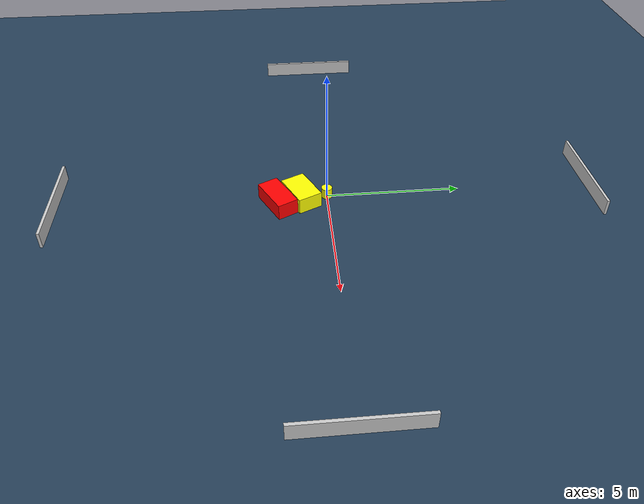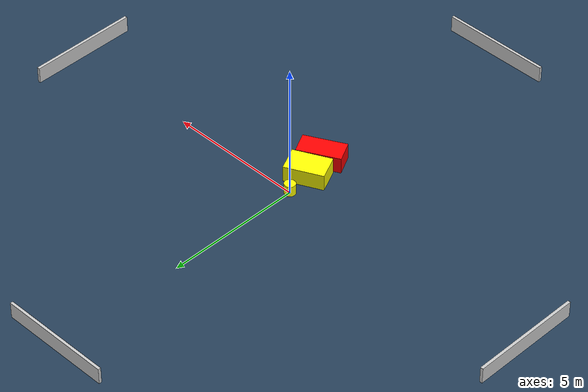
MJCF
<?xml version="1.0" ?>
<mujoco model="generated_environment">
  <option timestep="0.01" integrator="RK4" cone="elliptic"/>
  <default>
    <geom density="1"/>
  </default>
  <asset>
    <texture builtin="gradient" height="3072" name="skybox" rgb1="0.3 0.5 0.7" rgb2="0 0 0" type="skybox" width="512"/>
    <texture builtin="checker" height="300" name="groundplane" rgb1="0.2 0.3 0.4" rgb2="0.1 0.2 0.3" type="2d" width="300"/>
    <material name="groundplane" reflectance="0.2" texrepeat="5 5" texture="groundplane"/>
  </asset>
  <worldbody>
    <light dir="0 0 -1" directional="true" pos="0 0 1.5"/>
    <geom condim="3" friction="0.5 0.005 0.001" material="groundplane" name="floor" pos="0 0 0" size="0 0 0.05" type="plane"/>
    <body name="walls">
      <geom name="wall_1" condim="4" pos="-10.0 0.0 0.3" rgba="0.800000011920929 0.800000011920929 0.800000011920929 1.0" size="0.05 2.0 0.3" type="box"/>
      <geom name="wall_2" condim="4" pos="10.0 0.0 0.3" rgba="0.800000011920929 0.800000011920929 0.800000011920929 1.0" size="0.05 2.0 0.3" type="box"/>
      <geom name="wall_3" condim="4" pos="0.0 -10.0 0.3" rgba="0.800000011920929 0.800000011920929 0.800000011920929 1.0" size="2.0 0.05 0.3" type="box"/>
      <geom name="wall_4" condim="4" pos="0.0 10.0 0.3" rgba="0.800000011920929 0.800000011920929 0.800000011920929 1.0" size="2.0 0.05 0.3" type="box"/>
    </body>
    <body name="robot">
      <joint name="joint_x" type="slide" pos="0 0 0" axis="1 0 0"/>
      <joint name="joint_y" type="slide" pos="0 0 0" axis="0 1 0"/>
      <geom name="robot" type="cylinder" pos="0.0 0.0 0.2" size="0.2 0.2 0.0" mass="5.0" friction="1.0 0.005 0.0001" condim="4" rgba="1.0 1.0 0.0 1.0"/>
    </body>
    <body name="obstacle_1_movable">
      <geom name="obstacle_1_movable" condim="4" pos="0.13423675588219147 -0.9636801423895724 0.3" euler="0 0 115.63602776967856" friction="0.0 0.005 0.001" rgba="1.0 1.0 0.0 1.0" size="0.4601792383577155 0.7068476495845335 0.3" type="box" mass="0.1"/>
      <joint type="free"/>
    </body>
    <body name="obstacle_2_static">
      <geom name="obstacle_2_static" condim="4" pos="0.3705094255516805 -1.8416570996110122 0.3" euler="0 0 297.33454318849465" friction="0.0 0.005 0.001" rgba="1.0 0.0 0.0 1.0" size="0.39535836945460645 0.7814126980910736 0.3" type="box"/>
    </body>
  </worldbody>
  <actuator>
    <motor name="actuator_x" joint="joint_x" gear="1" ctrlrange="-1 1"/>
    <motor name="actuator_y" joint="joint_y" gear="1" ctrlrange="-1 1"/>
  </actuator>
</mujoco>
